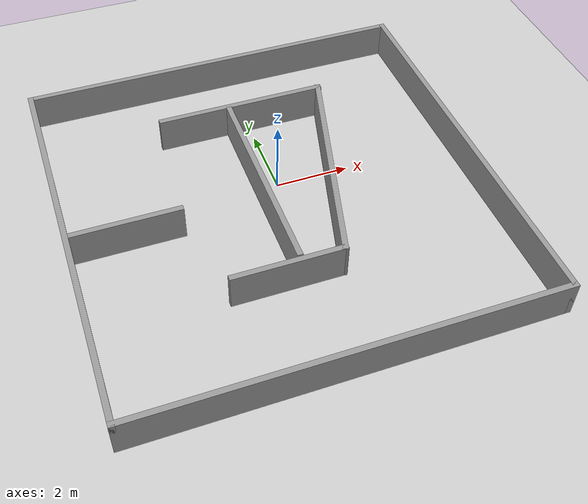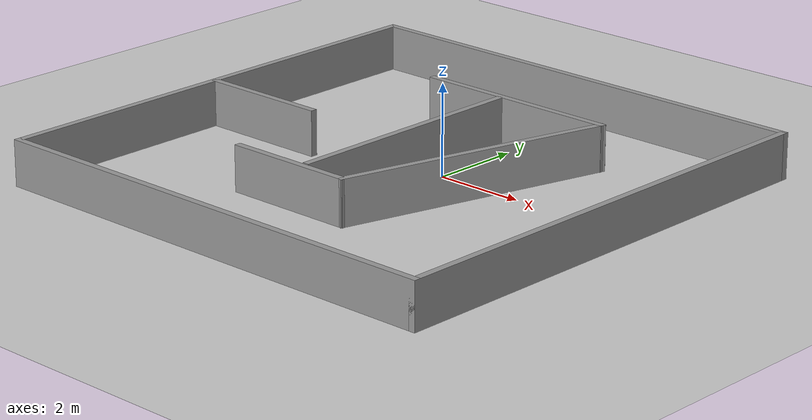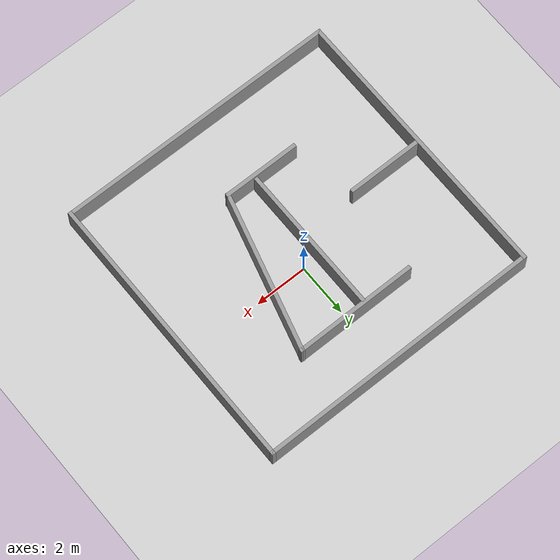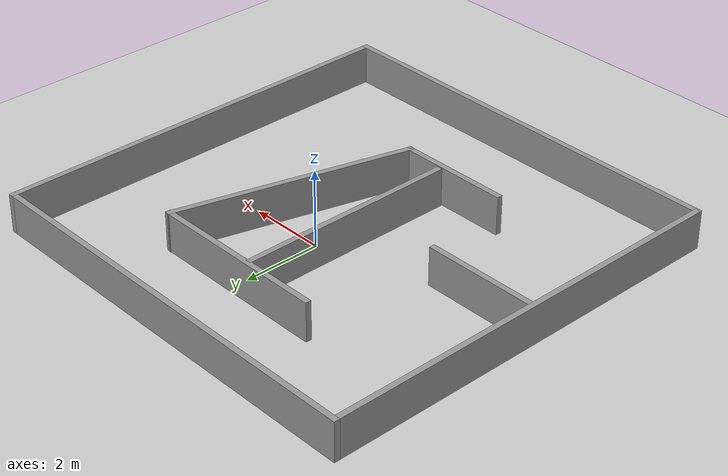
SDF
<sdf version="1.6">
 <world name="default">
  <light name="sun" type="directional">
   <pose>0 0 10 0 -0 0</pose>
   <diffuse>0.8 0.8 0.8 1</diffuse>
   <specular>0.2 0.2 0.2 1</specular>
   <attenuation>
    <range>1000</range>
    <constant>0.9</constant>
    <linear>0.01</linear>
    <quadratic>0.001</quadratic>
   </attenuation>
   <direction>-0.5 0.1 -0.9</direction>
  </light>
  <model name="ground_plane">
   <static>1</static>
   <link name="link">
    <collision name="collision">
     <geometry><plane><normal>0 0 1</normal><size>100 100</size></plane></geometry>
     <surface><friction><ode><mu>100</mu><mu2>50</mu2></ode></friction></surface>
    </collision>
    <visual name="visual">
     <cast_shadows>0</cast_shadows>
     <geometry><plane><normal>0 0 1</normal><size>100 100</size></plane></geometry>
     <material>
      <script><uri>file://media/materials/scripts/gazebo.material</uri><name>Gazebo/Grey</name></script>
     </material>
    </visual>
   </link>
  </model>
  <gravity>0 0 -9.8</gravity>
  <magnetic_field>6e-06 2.3e-05 -4.2e-05</magnetic_field>
  <atmosphere type="adiabatic"/>
  <physics name="default_physics" default="0" type="ode">
   <max_step_size>0.001</max_step_size>
   <real_time_factor>1</real_time_factor>
   <real_time_update_rate>1000</real_time_update_rate>
  </physics>
  <scene><ambient>0.4 0.4 0.4 1</ambient><background>0.7 0.7 0.7 1</background><shadows>1</shadows></scene>
  <spherical_coordinates>
   <surface_model>EARTH_WGS84</surface_model>
   <latitude_deg>0</latitude_deg>
   <longitude_deg>0</longitude_deg>
   <elevation>0</elevation>
   <heading_deg>0</heading_deg>
  </spherical_coordinates>
  <model name="Untitled66">
   <pose>-0.352288 -0.812097 0 0 -0 0</pose>
   <link name="Wall_0">
    <collision name="Wall_0_Collision">
     <geometry><box><size>11 0.15 1</size></box></geometry>
     <pose>0 0 0.5 0 -0 0</pose>
    </collision>
    <visual name="Wall_0_Visual">
     <pose>0 0 0.5 0 -0 0</pose>
     <geometry><box><size>11 0.15 1</size></box></geometry>
     <material>
      <script><uri>file://media/materials/scripts/gazebo.material</uri><name>Gazebo/Grey</name></script>
      <ambient>1 1 1 1</ambient>
     </material>
     <meta><layer>0</layer></meta>
    </visual>
    <pose>0 -5.425 0 0 -0 0</pose>
   </link>
   <link name="Wall_1">
    <collision name="Wall_1_Collision">
     <geometry><box><size>11 0.15 1</size></box></geometry>
     <pose>0 0 0.5 0 -0 0</pose>
    </collision>
    <visual name="Wall_1_Visual">
     <pose>0 0 0.5 0 -0 0</pose>
     <geometry><box><size>11 0.15 1</size></box></geometry>
     <material>
      <script><uri>file://media/materials/scripts/gazebo.material</uri><name>Gazebo/Grey</name></script>
      <ambient>1 1 1 1</ambient>
     </material>
     <meta><layer>0</layer></meta>
    </visual>
    <pose>5.425 0 0 0 -0 1.5708</pose>
   </link>
   <link name="Wall_11">
    <collision name="Wall_11_Collision">
     <geometry><box><size>5.75 0.15 1</size></box></geometry>
     <pose>0 0 0.5 0 -0 0</pose>
    </collision>
    <visual name="Wall_11_Visual">
     <pose>0 0 0.5 0 -0 0</pose>
     <geometry><box><size>5.75 0.15 1</size></box></geometry>
     <material>
      <script><uri>file://media/materials/scripts/gazebo.material</uri><name>Gazebo/Grey</name></script>
      <ambient>1 1 1 1</ambient>
     </material>
     <meta><layer>0</layer></meta>
    </visual>
    <pose>-0.243 0.375 0 0 -0 -1.5708</pose>
   </link>
   <link name="Wall_2">
    <collision name="Wall_2_Collision">
     <geometry><box><size>11 0.15 1</size></box></geometry>
     <pose>0 0 0.5 0 -0 0</pose>
    </collision>
    <visual name="Wall_2_Visual">
     <pose>0 0 0.5 0 -0 0</pose>
     <geometry><box><size>11 0.15 1</size></box></geometry>
     <material>
      <script><uri>file://media/materials/scripts/gazebo.material</uri><name>Gazebo/Grey</name></script>
      <ambient>1 1 1 1</ambient>
     </material>
     <meta><layer>0</layer></meta>
    </visual>
    <pose>0 5.425 0 0 -0 3.14159</pose>
   </link>
   <link name="Wall_3">
    <collision name="Wall_3_Collision">
     <geometry><box><size>11 0.15 1</size></box></geometry>
     <pose>0 0 0.5 0 -0 0</pose>
    </collision>
    <visual name="Wall_3_Visual">
     <pose>0 0 0.5 0 -0 0</pose>
     <geometry><box><size>11 0.15 1</size></box></geometry>
     <material>
      <script><uri>file://media/materials/scripts/gazebo.material</uri><name>Gazebo/Grey</name></script>
      <ambient>1 1 1 1</ambient>
     </material>
     <meta><layer>0</layer></meta>
    </visual>
    <pose>-5.425 0 0 0 -0 -1.5708</pose>
   </link>
   <link name="Wall_5">
    <collision name="Wall_5_Collision">
     <geometry><box><size>3 0.15 1</size></box></geometry>
     <pose>0 0 0.5 0 -0 0</pose>
    </collision>
    <visual name="Wall_5_Visual">
     <pose>0 0 0.5 0 -0 0</pose>
     <geometry><box><size>3 0.15 1</size></box></geometry>
     <material>
      <script><uri>file://media/materials/scripts/gazebo.material</uri><name>Gazebo/Grey</name></script>
      <ambient>1 1 1 1</ambient>
     </material>
     <meta><layer>0</layer></meta>
    </visual>
    <pose>-3.951 -0.07 0 0 -0 0</pose>
   </link>
   <link name="Wall_7">
    <collision name="Wall_7_Collision">
     <geometry><box><size>4.75 0.15 1</size></box></geometry>
     <pose>0 0 0.5 0 -0 0</pose>
    </collision>
    <visual name="Wall_7_Visual">
     <pose>0 0 0.5 0 -0 0</pose>
     <geometry><box><size>4.75 0.15 1</size></box></geometry>
     <material>
      <script><uri>file://media/materials/scripts/gazebo.material</uri><name>Gazebo/Grey</name></script>
      <ambient>1 1 1 1</ambient>
     </material>
     <meta><layer>0</layer></meta>
    </visual>
    <pose>0.142 3.282 0 0 -0 0</pose>
   </link>
   <link name="Wall_8">
    <collision name="Wall_8_Collision">
     <geometry><box><size>6.25 0.15 1</size></box></geometry>
     <pose>0 0 0.5 0 -0 0</pose>
    </collision>
    <visual name="Wall_8_Visual">
     <pose>0 0 0.5 0 -0 0</pose>
     <geometry><box><size>6.25 0.15 1</size></box></geometry>
     <material>
      <script><uri>file://media/materials/scripts/gazebo.material</uri><name>Gazebo/Grey</name></script>
      <ambient>1 1 1 1</ambient>
     </material>
     <meta><layer>0</layer></meta>
    </visual>
    <pose>1.6525 0.3355 0 0 -0 -1.83259</pose>
   </link>
   <link name="Wall_9">
    <collision name="Wall_9_Collision">
     <geometry><box><size>3 0.15 1</size></box></geometry>
     <pose>0 0 0.5 0 -0 0</pose>
    </collision>
    <visual name="Wall_9_Visual">
     <pose>0 0 0.5 0 -0 0</pose>
     <geometry><box><size>3 0.15 1</size></box></geometry>
     <material>
      <script><uri>file://media/materials/scripts/gazebo.material</uri><name>Gazebo/Grey</name></script>
      <ambient>1 1 1 1</ambient>
     </material>
     <meta><layer>0</layer></meta>
    </visual>
    <pose>-0.562 -2.611 0 0 -0 3.14159</pose>
   </link>
   <static>1</static>
  </model>
 </world>
</sdf>
